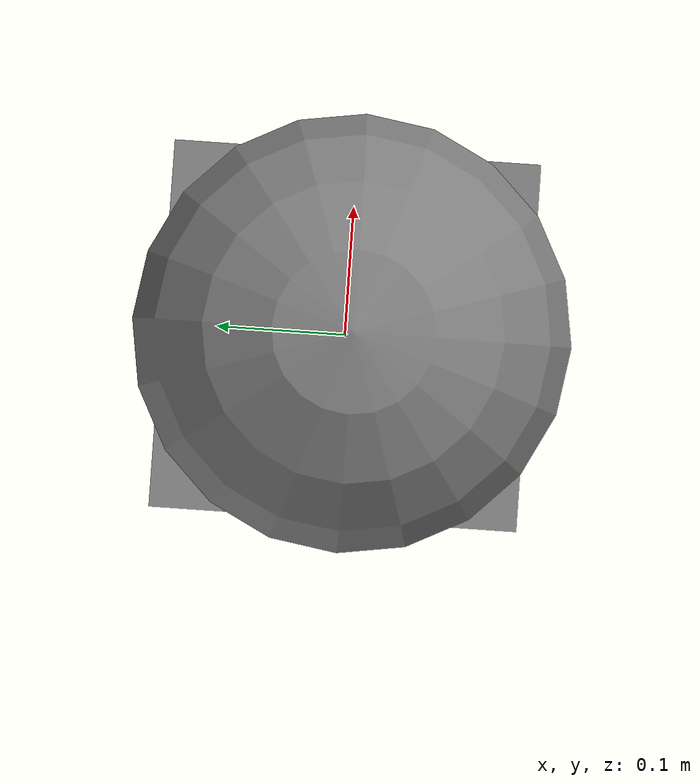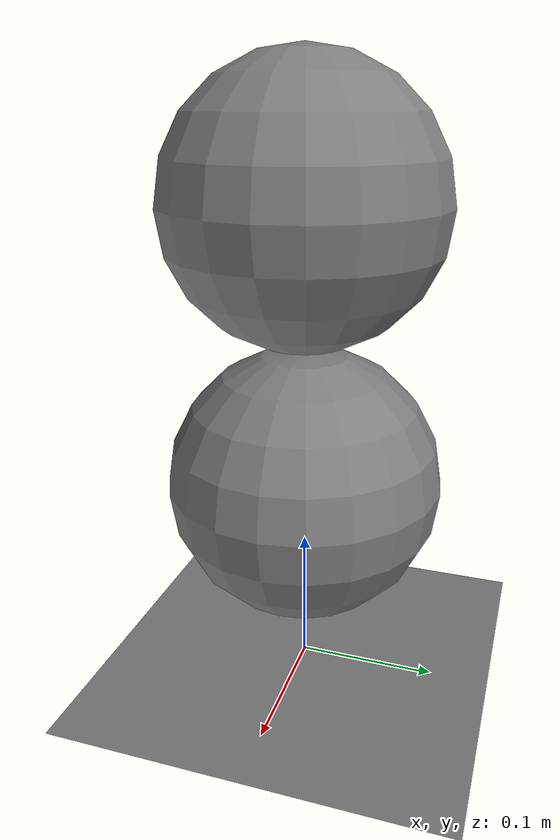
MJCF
<mujoco model="single_island">
        <option gravity="0 0 -9.81" timestep="0.002" sleep_tolerance="0.5">
            <flag sleep="enable"/>
        </option>
        <worldbody>
            <geom type="plane" size="5 5 0.1" solref="0.005 1.5"/>
            <body name="ball_bottom" pos="0 0 0.15">
                <freejoint name="free_bottom"/>
                <geom type="sphere" size="0.1" mass="1.0" solref="0.005 1.5"/>
            </body>
            <body name="ball_top" pos="0 0 0.35">
                <freejoint name="free_top"/>
                <geom type="sphere" size="0.1" mass="1.0" solref="0.005 1.5"/>
            </body>
        </worldbody>
    </mujoco>
